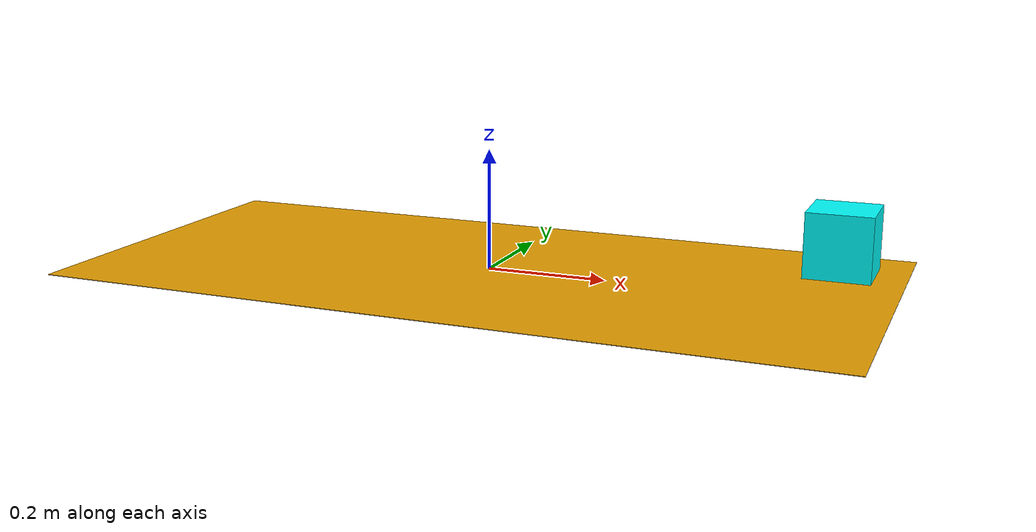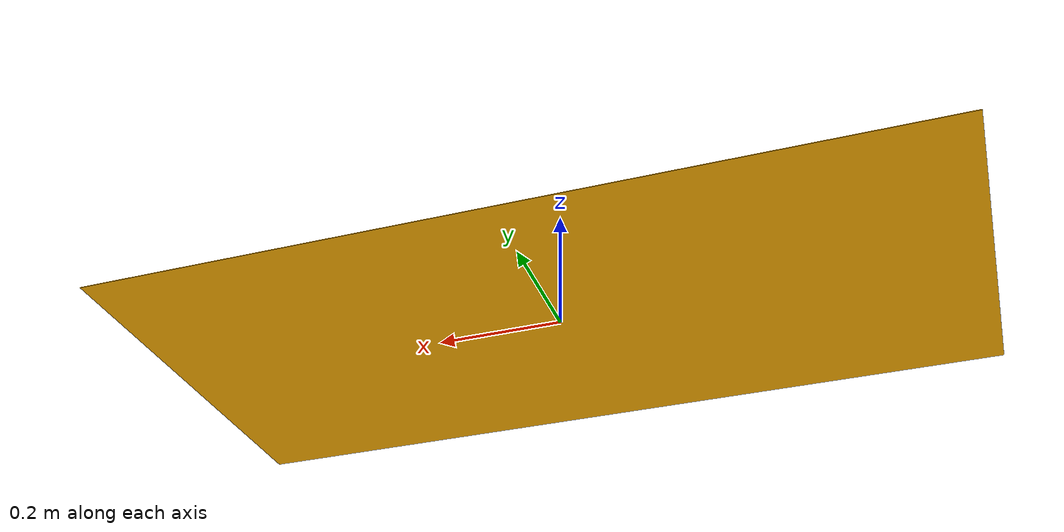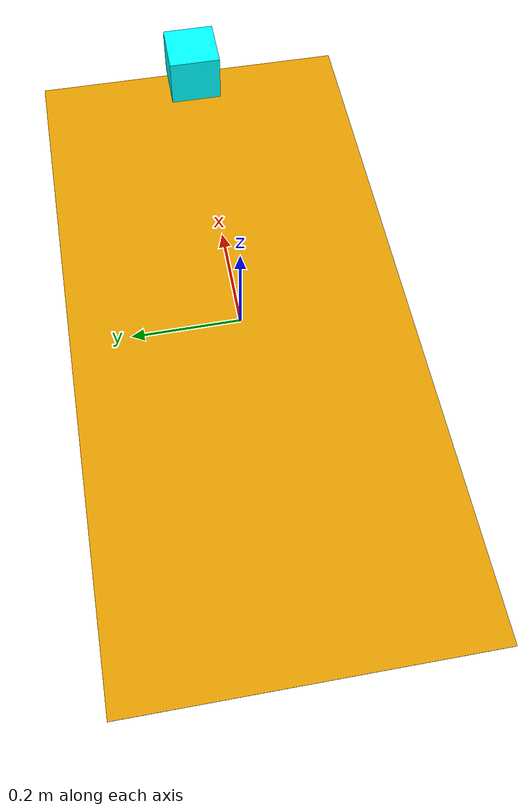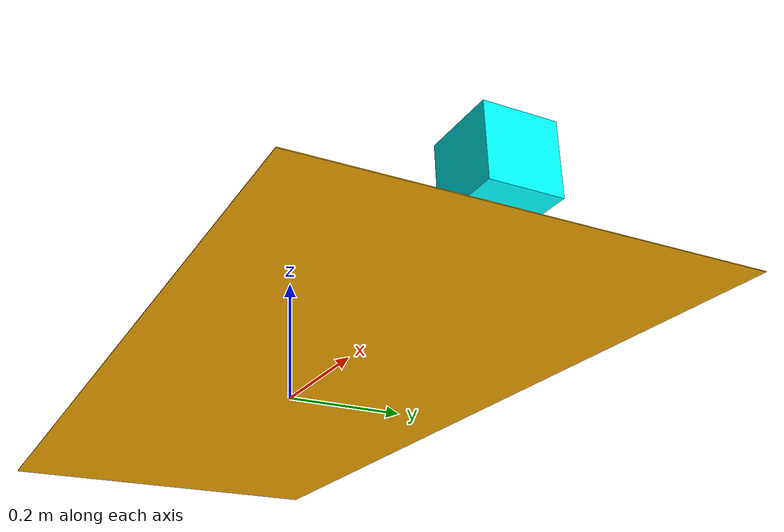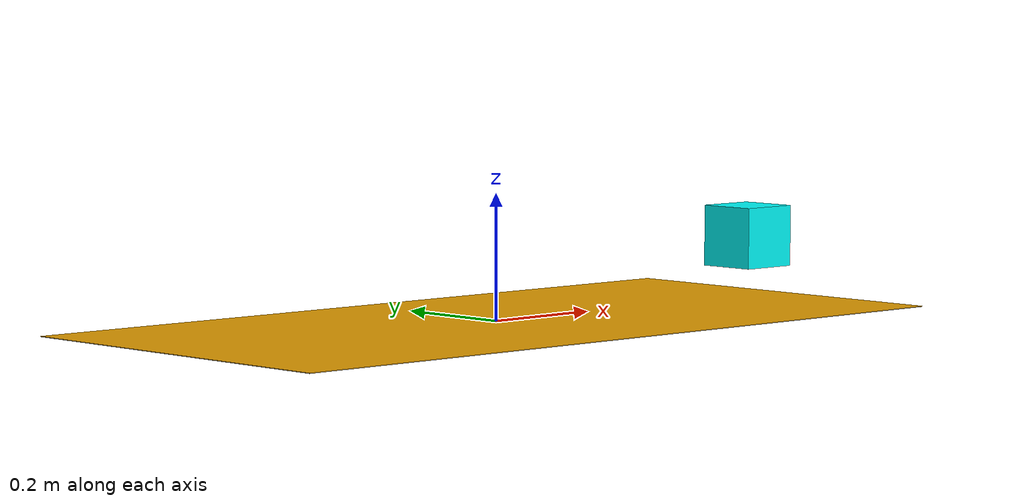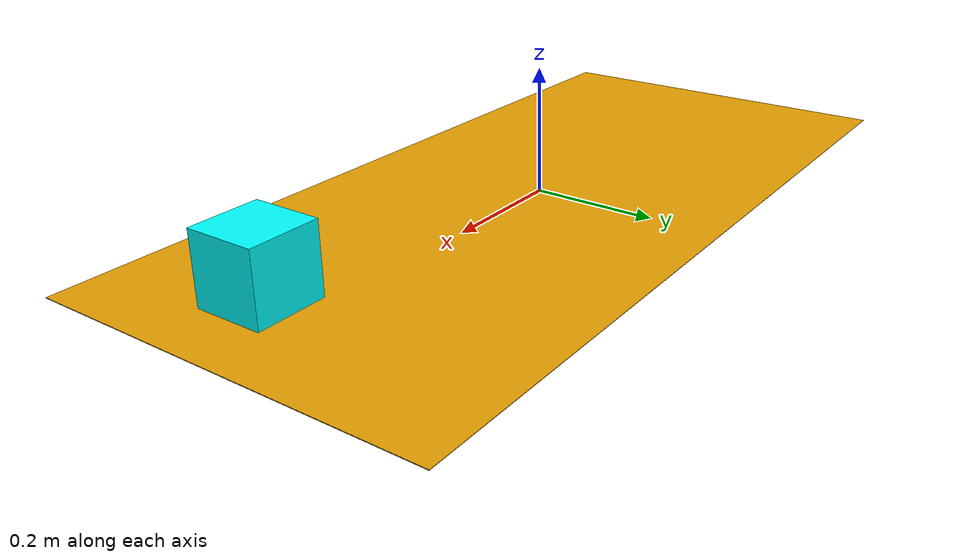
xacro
<?xml version="1.0"?>
<robot xmlns:xacro="http://ros.org/wiki/xacro"
		name="lxind">

	<!-- const -->
	<xacro:property name="M_PI" value="3.1415926" />

    <!-- large picking robot -->

	<!-- base -->
	<link name="base_footprint">
		<visual>
			<geometry>
				<box size="1.3 0.625 0.001" />
			</geometry>
		</visual>
	</link>

	<link name="base_link">
		<visual>
			<geometry>
				<box size="1.3 0.625 0.001" />
			</geometry>
			<material name="green">
				<color rgba="0 1 0 1" />
			</material>
		</visual>
	</link>

	<link name="laser_link">
		<visual>
			<geometry>
				<box size="0.1 0.1 0.1" />
			</geometry>
			<material name="gb">
				<color rgba="0 1 1 1" />
			</material>
		</visual>
	</link>

<!-- JOINTS -->
	<joint name="base_joint" type="fixed">
		<origin rpy="0 0 0" xyz="0 0 0" />   <!-- AT TOP SURF===> NOW: FLOOR same-->
		<parent link="base_footprint" />
		<child link="base_link" />
	</joint>

	<joint name="base_laser_joint" type="fixed">
		<origin rpy="0 0 0" xyz="0.569 0 0.1" />   <!-- xy offset from centre of driving wheel -->
		<parent link="base_link" />
		<child link="laser_link" />
	</joint>

</robot>
